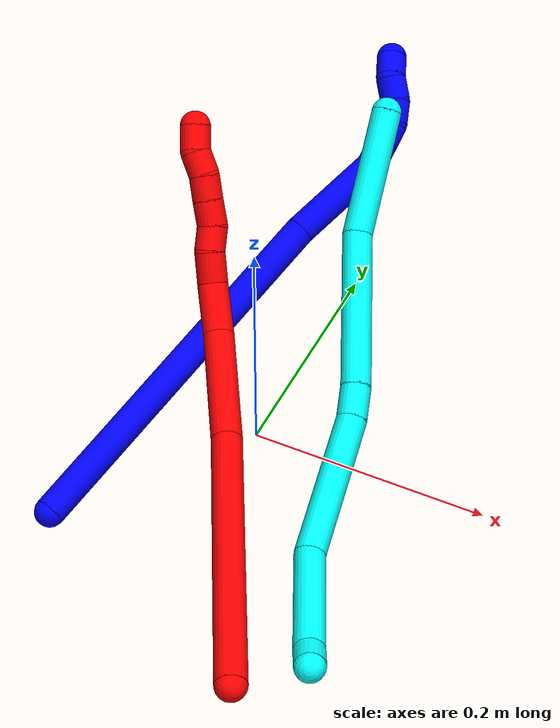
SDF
<sdf version="1.7">
 <world name="default">
  <plugin name="TubeGeneratorPlugin" filename="libtube_generator_plugin.so"/>
  <model name="photoneo_s_sensor">
   <static>1</static>
   <pose>0 0 2 1.57079 1.57079 3.14159</pose>
   <link name="link">
    <inertial><mass>0.1</mass></inertial>
    <sensor name="sensor" type="depth">
     <update_rate>30</update_rate>
     <camera>
      <horizontal_fov>1.22</horizontal_fov>
      <image><width>1920</width><height>1200</height><format>B8G8R8</format></image>
      <clip><near>0.1</near><far>4</far></clip>
      <depth_camera><output>points</output></depth_camera>
     </camera>
     <plugin name="camera_plugin" filename="libgazebo_ros_depth_camera.so">
      <baseline>0.2</baseline>
      <alwaysOn>1</alwaysOn>
      <updateRate>0.0</updateRate>
      <cameraName>camera_ir</cameraName>
      <imageTopicName>/camera/color/image_raw</imageTopicName>
      <cameraInfoTopicName>/camera/color/camera_info</cameraInfoTopicName>
      <depthImageTopicName>/camera/depth/image_raw</depthImageTopicName>
      <depthImageCameraInfoTopicName>/camera/depth/camera_info</depthImageCameraInfoTopicName>
      <pointCloudTopicName>/camera/depth/points</pointCloudTopicName>
      <frameName>fr_optical</frameName>
      <pointCloudCutoff>0.1</pointCloudCutoff>
      <pointCloudCutoffMax>2.0</pointCloudCutoffMax>
      <distortionK1>0</distortionK1>
      <distortionK2>0</distortionK2>
      <distortionK3>0</distortionK3>
      <distortionT1>0</distortionT1>
      <distortionT2>0</distortionT2>
      <CxPrime>0</CxPrime>
      <Cx>0</Cx>
      <Cy>0</Cy>
      <focalLength>0</focalLength>
      <hackBaseline>0</hackBaseline>
     </plugin>
    </sensor>
   </link>
  </model>
  <gravity>0 0 -9.8</gravity>
  <magnetic_field>6e-06 2.3e-05 -4.2e-05</magnetic_field>
  <atmosphere type="adiabatic"/>
  <physics name="default_physics" default="0" type="ode">
   <max_step_size>0.003</max_step_size>
   <real_time_factor>1</real_time_factor>
   <real_time_update_rate>1000</real_time_update_rate>
   <max_contacts>10000</max_contacts>
   <ode>
    <solver>
     <type>quick</type>
     <iters>100</iters>
     <sor>1.3</sor>
     <use_dynamic_moi_rescaling>0</use_dynamic_moi_rescaling>
    </solver>
    <constraints>
     <contact_max_correcting_vel>0</contact_max_correcting_vel>
     <contact_surface_layer>0.001</contact_surface_layer>
     <cfm>0</cfm>
     <erp>0.2</erp>
    </constraints>
   </ode>
  </physics>
  <scene><ambient>0.4 0.4 0.4 1</ambient><background>0.7 0.7 0.7 1</background><shadows>0</shadows></scene>
  <audio><device>default</device></audio>
  <spherical_coordinates>
   <surface_model>EARTH_WGS84</surface_model>
   <latitude_deg>0</latitude_deg>
   <longitude_deg>0</longitude_deg>
   <elevation>0</elevation>
   <heading_deg>0</heading_deg>
  </spherical_coordinates>
  <model name="bin">
   <static>1</static>
   <link name="bottom">
    <collision name="collision-bottom">
     <pose>0 0 -0.01 0 -0 0</pose>
     <geometry><box><size>0.8 0.6 0.02</size></box></geometry>
     <surface>
      <friction><ode><mu>100</mu><mu2>100</mu2></ode></friction>
      <contact><collide_bitmask>65535</collide_bitmask></contact>
     </surface>
    </collision>
   </link>
   <link name="west_wall">
    <collision name="collision-west_wall">
     <pose>-0.41 0 0.1 0 -0 0</pose>
     <geometry><box><size>0.02 0.6 0.2</size></box></geometry>
     <surface>
      <friction><ode><mu>100</mu><mu2>100</mu2></ode></friction>
      <contact><collide_bitmask>65535</collide_bitmask></contact>
     </surface>
    </collision>
   </link>
   <link name="east_wall">
    <collision name="collision-east_wall">
     <pose>0.41 0 0.1 0 -0 0</pose>
     <geometry><box><size>0.02 0.6 0.2</size></box></geometry>
     <surface>
      <friction><ode><mu>100</mu><mu2>100</mu2></ode></friction>
      <contact><collide_bitmask>65535</collide_bitmask></contact>
     </surface>
    </collision>
   </link>
   <link name="south_wall">
    <collision name="collision-south_wall">
     <pose>0 -0.31 0.1 0 -0 0</pose>
     <geometry><box><size>0.8 0.02 0.2</size></box></geometry>
     <surface>
      <friction><ode><mu>100</mu><mu2>100</mu2></ode></friction>
      <contact><collide_bitmask>65535</collide_bitmask></contact>
     </surface>
    </collision>
   </link>
   <link name="north_wall">
    <collision name="collision-north_wall">
     <pose>0 0.31 0.1 0 -0 0</pose>
     <geometry><box><size>0.8 0.02 0.2</size></box></geometry>
     <surface>
      <friction><ode><mu>100</mu><mu2>100</mu2></ode></friction>
      <contact><collide_bitmask>65535</collide_bitmask></contact>
     </surface>
    </collision>
   </link>
  </model>
  <model name="1">
   <static>0</static>
   <link name="1">
    <collision name="collision-cylinder-e_1_1_4">
     <pose>0.028867 0.117736 0.101486 -0.859388 0.18362 -0.084331</pose>
     <geometry><cylinder><radius>0.0125</radius><length>0.316193</length></cylinder></geometry>
     <surface>
      <friction><ode><mu>1.16</mu><mu2>1.16</mu2><slip1>0</slip1><slip2>0</slip2></ode></friction>
      <contact><ode><kp>1e+06</kp><kd>1</kd><max_vel>0</max_vel><min_depth>0.001</min_depth></ode></contact>
     </surface>
    </collision>
    <visual name="visual-cylinder-e_1_1_4">
     <pose>0.028867 0.117736 0.101486 -0.859388 0.18362 -0.084331</pose>
     <geometry><cylinder><radius>0.0125</radius><length>0.316193</length></cylinder></geometry>
     <material><ambient>0 0 1 1</ambient></material>
    </visual>
    <collision name="collision-cylinder-e_2_4_5">
     <pose>0.065163 0.261462 0.234481 -0.689715 0.179938 -0.064788</pose>
     <geometry><cylinder><radius>0.0125</radius><length>0.08303</length></cylinder></geometry>
     <surface>
      <friction><ode><mu>1.16</mu><mu2>1.16</mu2><slip1>0</slip1><slip2>0</slip2></ode></friction>
      <contact><ode><kp>1e+06</kp><kd>1</kd><max_vel>0</max_vel><min_depth>0.001</min_depth></ode></contact>
     </surface>
    </collision>
    <visual name="visual-cylinder-e_2_4_5">
     <pose>0.065163 0.261462 0.234481 -0.689715 0.179938 -0.064788</pose>
     <geometry><cylinder><radius>0.0125</radius><length>0.08303</length></cylinder></geometry>
     <material><ambient>0 0 1 1</ambient></material>
    </visual>
    <collision name="collision-cylinder-e_3_5_6">
     <pose>0.071504 0.295343 0.272471 -0.883159 -0.106261 0.050267</pose>
     <geometry><cylinder><radius>0.0125</radius><length>0.020537</length></cylinder></geometry>
     <surface>
      <friction><ode><mu>1.16</mu><mu2>1.16</mu2><slip1>0</slip1><slip2>0</slip2></ode></friction>
      <contact><ode><kp>1e+06</kp><kd>1</kd><max_vel>0</max_vel><min_depth>0.001</min_depth></ode></contact>
     </surface>
    </collision>
    <visual name="visual-cylinder-e_3_5_6">
     <pose>0.071504 0.295343 0.272471 -0.883159 -0.106261 0.050267</pose>
     <geometry><cylinder><radius>0.0125</radius><length>0.020537</length></cylinder></geometry>
     <material><ambient>0 0 1 1</ambient></material>
    </visual>
    <collision name="collision-cylinder-e_4_6_7">
     <pose>0.069138 0.310942 0.285317 -0.880535 -0.127103 0.059942</pose>
     <geometry><cylinder><radius>0.0125</radius><length>0.020157</length></cylinder></geometry>
     <surface>
      <friction><ode><mu>1.16</mu><mu2>1.16</mu2><slip1>0</slip1><slip2>0</slip2></ode></friction>
      <contact><ode><kp>1e+06</kp><kd>1</kd><max_vel>0</max_vel><min_depth>0.001</min_depth></ode></contact>
     </surface>
    </collision>
    <visual name="visual-cylinder-e_4_6_7">
     <pose>0.069138 0.310942 0.285317 -0.880535 -0.127103 0.059942</pose>
     <geometry><cylinder><radius>0.0125</radius><length>0.020157</length></cylinder></geometry>
     <material><ambient>0 0 1 1</ambient></material>
    </visual>
    <collision name="collision-cylinder-e_5_7_8">
     <pose>0.064542 0.327295 0.295461 -1.15876 -0.338163 0.222464</pose>
     <geometry><cylinder><radius>0.0125</radius><length>0.020002</length></cylinder></geometry>
     <surface>
      <friction><ode><mu>1.16</mu><mu2>1.16</mu2><slip1>0</slip1><slip2>0</slip2></ode></friction>
      <contact><ode><kp>1e+06</kp><kd>1</kd><max_vel>0</max_vel><min_depth>0.001</min_depth></ode></contact>
     </surface>
    </collision>
    <visual name="visual-cylinder-e_5_7_8">
     <pose>0.064542 0.327295 0.295461 -1.15876 -0.338163 0.222464</pose>
     <geometry><cylinder><radius>0.0125</radius><length>0.020002</length></cylinder></geometry>
     <material><ambient>0 0 1 1</ambient></material>
    </visual>
    <collision name="collision-cylinder-e_6_8_9">
     <pose>0.055609 0.344061 0.300908 -1.36812 -0.595338 0.490244</pose>
     <geometry><cylinder><radius>0.0125</radius><length>0.020027</length></cylinder></geometry>
     <surface>
      <friction><ode><mu>1.16</mu><mu2>1.16</mu2><slip1>0</slip1><slip2>0</slip2></ode></friction>
      <contact><ode><kp>1e+06</kp><kd>1</kd><max_vel>0</max_vel><min_depth>0.001</min_depth></ode></contact>
     </surface>
    </collision>
    <visual name="visual-cylinder-e_6_8_9">
     <pose>0.055609 0.344061 0.300908 -1.36812 -0.595338 0.490244</pose>
     <geometry><cylinder><radius>0.0125</radius><length>0.020027</length></cylinder></geometry>
     <material><ambient>0 0 1 1</ambient></material>
    </visual>
    <collision name="collision-cylinder-e_7_9_2">
     <pose>0.048325 0.361877 0.304518 -1.37318 -0.167196 0.137142</pose>
     <geometry><cylinder><radius>0.0125</radius><length>0.020054</length></cylinder></geometry>
     <surface>
      <friction><ode><mu>1.16</mu><mu2>1.16</mu2><slip1>0</slip1><slip2>0</slip2></ode></friction>
      <contact><ode><kp>1e+06</kp><kd>1</kd><max_vel>0</max_vel><min_depth>0.001</min_depth></ode></contact>
     </surface>
    </collision>
    <visual name="visual-cylinder-e_7_9_2">
     <pose>0.048325 0.361877 0.304518 -1.37318 -0.167196 0.137142</pose>
     <geometry><cylinder><radius>0.0125</radius><length>0.020054</length></cylinder></geometry>
     <material><ambient>0 0 1 1</ambient></material>
    </visual>
    <collision name="collision-sphere-2">
     <pose>0.046656 0.371572 0.30646 0 -0 0</pose>
     <geometry><sphere><radius>0.0125</radius></sphere></geometry>
     <surface>
      <friction><ode><mu>1.16</mu><mu2>1.16</mu2><slip1>0</slip1><slip2>0</slip2></ode></friction>
      <contact><ode><kp>1e+06</kp><kd>1</kd><max_vel>0</max_vel><min_depth>0.001</min_depth></ode></contact>
     </surface>
    </collision>
    <visual name="visual-sphere-2">
     <pose>0.046656 0.371572 0.30646 0 -0 0</pose>
     <geometry><sphere><radius>0.0125</radius></sphere></geometry>
     <material><ambient>0 0 1 1</ambient></material>
    </visual>
    <collision name="collision-sphere-9">
     <pose>0.049993 0.352182 0.302577 0 -0 0</pose>
     <geometry><sphere><radius>0.0125</radius></sphere></geometry>
     <surface>
      <friction><ode><mu>1.16</mu><mu2>1.16</mu2><slip1>0</slip1><slip2>0</slip2></ode></friction>
      <contact><ode><kp>1e+06</kp><kd>1</kd><max_vel>0</max_vel><min_depth>0.001</min_depth></ode></contact>
     </surface>
    </collision>
    <visual name="visual-sphere-9">
     <pose>0.049993 0.352182 0.302577 0 -0 0</pose>
     <geometry><sphere><radius>0.0125</radius></sphere></geometry>
     <material><ambient>0 0 1 1</ambient></material>
    </visual>
    <collision name="collision-sphere-4">
     <pose>0.057734 0.235472 0.202972 0 -0 0</pose>
     <geometry><sphere><radius>0.0125</radius></sphere></geometry>
     <surface>
      <friction><ode><mu>1.16</mu><mu2>1.16</mu2><slip1>0</slip1><slip2>0</slip2></ode></friction>
      <contact><ode><kp>1e+06</kp><kd>1</kd><max_vel>0</max_vel><min_depth>0.001</min_depth></ode></contact>
     </surface>
    </collision>
    <visual name="visual-sphere-4">
     <pose>0.057734 0.235472 0.202972 0 -0 0</pose>
     <geometry><sphere><radius>0.0125</radius></sphere></geometry>
     <material><ambient>0 0 1 1</ambient></material>
    </visual>
    <collision name="collision-sphere-1">
     <geometry><sphere><radius>0.0125</radius></sphere></geometry>
     <surface>
      <friction><ode><mu>1.16</mu><mu2>1.16</mu2><slip1>0</slip1><slip2>0</slip2></ode></friction>
      <contact><ode><kp>1e+06</kp><kd>1</kd><max_vel>0</max_vel><min_depth>0.001</min_depth></ode></contact>
     </surface>
    </collision>
    <visual name="visual-sphere-1">
     <geometry><sphere><radius>0.0125</radius></sphere></geometry>
     <material><ambient>0 0 1 1</ambient></material>
    </visual>
    <collision name="collision-sphere-8">
     <pose>0.061224 0.33594 0.29924 0 -0 0</pose>
     <geometry><sphere><radius>0.0125</radius></sphere></geometry>
     <surface>
      <friction><ode><mu>1.16</mu><mu2>1.16</mu2><slip1>0</slip1><slip2>0</slip2></ode></friction>
      <contact><ode><kp>1e+06</kp><kd>1</kd><max_vel>0</max_vel><min_depth>0.001</min_depth></ode></contact>
     </surface>
    </collision>
    <visual name="visual-sphere-8">
     <pose>0.061224 0.33594 0.29924 0 -0 0</pose>
     <geometry><sphere><radius>0.0125</radius></sphere></geometry>
     <material><ambient>0 0 1 1</ambient></material>
    </visual>
    <collision name="collision-sphere-5">
     <pose>0.072593 0.287453 0.26599 0 -0 0</pose>
     <geometry><sphere><radius>0.0125</radius></sphere></geometry>
     <surface>
      <friction><ode><mu>1.16</mu><mu2>1.16</mu2><slip1>0</slip1><slip2>0</slip2></ode></friction>
      <contact><ode><kp>1e+06</kp><kd>1</kd><max_vel>0</max_vel><min_depth>0.001</min_depth></ode></contact>
     </surface>
    </collision>
    <visual name="visual-sphere-5">
     <pose>0.072593 0.287453 0.26599 0 -0 0</pose>
     <geometry><sphere><radius>0.0125</radius></sphere></geometry>
     <material><ambient>0 0 1 1</ambient></material>
    </visual>
    <collision name="collision-sphere-6">
     <pose>0.070415 0.303233 0.278952 0 -0 0</pose>
     <geometry><sphere><radius>0.0125</radius></sphere></geometry>
     <surface>
      <friction><ode><mu>1.16</mu><mu2>1.16</mu2><slip1>0</slip1><slip2>0</slip2></ode></friction>
      <contact><ode><kp>1e+06</kp><kd>1</kd><max_vel>0</max_vel><min_depth>0.001</min_depth></ode></contact>
     </surface>
    </collision>
    <visual name="visual-sphere-6">
     <pose>0.070415 0.303233 0.278952 0 -0 0</pose>
     <geometry><sphere><radius>0.0125</radius></sphere></geometry>
     <material><ambient>0 0 1 1</ambient></material>
    </visual>
    <collision name="collision-sphere-7">
     <pose>0.06786 0.31865 0.291683 0 -0 0</pose>
     <geometry><sphere><radius>0.0125</radius></sphere></geometry>
     <surface>
      <friction><ode><mu>1.16</mu><mu2>1.16</mu2><slip1>0</slip1><slip2>0</slip2></ode></friction>
      <contact><ode><kp>1e+06</kp><kd>1</kd><max_vel>0</max_vel><min_depth>0.001</min_depth></ode></contact>
     </surface>
    </collision>
    <visual name="visual-sphere-7">
     <pose>0.06786 0.31865 0.291683 0 -0 0</pose>
     <geometry><sphere><radius>0.0125</radius></sphere></geometry>
     <material><ambient>0 0 1 1</ambient></material>
    </visual>
    <inertial>
     <pose>0.041548 0.183927 0.161896 0 -0 0</pose>
     <mass>0.5</mass>
     <inertia>
      <ixx>0.002432</ixx>
      <ixy>0</ixy>
      <ixz>0</ixz>
      <iyy>0.001604</iyy>
      <iyz>0</iyz>
      <izz>-0.002476</izz>
     </inertia>
    </inertial>
   </link>
   <pose>-0.106977 -0.152563 0.011497 0.219926 0.976378 0.641606</pose>
  </model>
  <model name="2">
   <static>0</static>
   <link name="2">
    <collision name="collision-cylinder-e_1_1_4">
     <pose>-0.005711 0.059604 -0.098749 -2.59854 -0.049475 0.17728</pose>
     <geometry><cylinder><radius>0.0125</radius><length>0.230969</length></cylinder></geometry>
     <surface>
      <friction><ode><mu>1.16</mu><mu2>1.16</mu2><slip1>0</slip1><slip2>0</slip2></ode></friction>
      <contact><ode><kp>1e+06</kp><kd>1</kd><max_vel>0</max_vel><min_depth>0.001</min_depth></ode></contact>
     </surface>
    </collision>
    <visual name="visual-cylinder-e_1_1_4">
     <pose>-0.005711 0.059604 -0.098749 -2.59854 -0.049475 0.17728</pose>
     <geometry><cylinder><radius>0.0125</radius><length>0.230969</length></cylinder></geometry>
     <material><ambient>1 0 0 1</ambient></material>
    </visual>
    <collision name="collision-cylinder-e_2_4_5">
     <pose>-0.021857 0.150034 -0.232566 -2.42046 -0.219877 0.569598</pose>
     <geometry><cylinder><radius>0.0125</radius><length>0.095683</length></cylinder></geometry>
     <surface>
      <friction><ode><mu>1.16</mu><mu2>1.16</mu2><slip1>0</slip1><slip2>0</slip2></ode></friction>
      <contact><ode><kp>1e+06</kp><kd>1</kd><max_vel>0</max_vel><min_depth>0.001</min_depth></ode></contact>
     </surface>
    </collision>
    <visual name="visual-cylinder-e_2_4_5">
     <pose>-0.021857 0.150034 -0.232566 -2.42046 -0.219877 0.569598</pose>
     <geometry><cylinder><radius>0.0125</radius><length>0.095683</length></cylinder></geometry>
     <material><ambient>1 0 0 1</ambient></material>
    </visual>
    <collision name="collision-cylinder-e_3_5_6">
     <pose>-0.04066 0.197095 -0.279141 -2.18746 -0.398072 0.744121</pose>
     <geometry><cylinder><radius>0.0125</radius><length>0.043177</length></cylinder></geometry>
     <surface>
      <friction><ode><mu>1.16</mu><mu2>1.16</mu2><slip1>0</slip1><slip2>0</slip2></ode></friction>
      <contact><ode><kp>1e+06</kp><kd>1</kd><max_vel>0</max_vel><min_depth>0.001</min_depth></ode></contact>
     </surface>
    </collision>
    <visual name="visual-cylinder-e_3_5_6">
     <pose>-0.04066 0.197095 -0.279141 -2.18746 -0.398072 0.744121</pose>
     <geometry><cylinder><radius>0.0125</radius><length>0.043177</length></cylinder></geometry>
     <material><ambient>1 0 0 1</ambient></material>
    </visual>
    <collision name="collision-cylinder-e_4_6_7">
     <pose>-0.055908 0.22466 -0.293002 -1.77551 -0.536357 0.651375</pose>
     <geometry><cylinder><radius>0.0125</radius><length>0.026923</length></cylinder></geometry>
     <surface>
      <friction><ode><mu>1.16</mu><mu2>1.16</mu2><slip1>0</slip1><slip2>0</slip2></ode></friction>
      <contact><ode><kp>1e+06</kp><kd>1</kd><max_vel>0</max_vel><min_depth>0.001</min_depth></ode></contact>
     </surface>
    </collision>
    <visual name="visual-cylinder-e_4_6_7">
     <pose>-0.055908 0.22466 -0.293002 -1.77551 -0.536357 0.651375</pose>
     <geometry><cylinder><radius>0.0125</radius><length>0.026923</length></cylinder></geometry>
     <material><ambient>1 0 0 1</ambient></material>
    </visual>
    <collision name="collision-cylinder-e_5_7_8">
     <pose>-0.065877 0.245464 -0.297893 -1.83255 -0.30524 0.395651</pose>
     <geometry><cylinder><radius>0.0125</radius><length>0.020566</length></cylinder></geometry>
     <surface>
      <friction><ode><mu>1.16</mu><mu2>1.16</mu2><slip1>0</slip1><slip2>0</slip2></ode></friction>
      <contact><ode><kp>1e+06</kp><kd>1</kd><max_vel>0</max_vel><min_depth>0.001</min_depth></ode></contact>
     </surface>
    </collision>
    <visual name="visual-cylinder-e_5_7_8">
     <pose>-0.065877 0.245464 -0.297893 -1.83255 -0.30524 0.395651</pose>
     <geometry><cylinder><radius>0.0125</radius><length>0.020566</length></cylinder></geometry>
     <material><ambient>1 0 0 1</ambient></material>
    </visual>
    <collision name="collision-cylinder-e_6_8_9">
     <pose>-0.075173 0.263476 -0.302521 -1.81091 -0.614695 0.76875</pose>
     <geometry><cylinder><radius>0.0125</radius><length>0.02152</length></cylinder></geometry>
     <surface>
      <friction><ode><mu>1.16</mu><mu2>1.16</mu2><slip1>0</slip1><slip2>0</slip2></ode></friction>
      <contact><ode><kp>1e+06</kp><kd>1</kd><max_vel>0</max_vel><min_depth>0.001</min_depth></ode></contact>
     </surface>
    </collision>
    <visual name="visual-cylinder-e_6_8_9">
     <pose>-0.075173 0.263476 -0.302521 -1.81091 -0.614695 0.76875</pose>
     <geometry><cylinder><radius>0.0125</radius><length>0.02152</length></cylinder></geometry>
     <material><ambient>1 0 0 1</ambient></material>
    </visual>
    <collision name="collision-cylinder-e_7_9_10">
     <pose>-0.087007 0.280212 -0.30648 -1.79487 -0.589838 0.727692</pose>
     <geometry><cylinder><radius>0.0125</radius><length>0.020237</length></cylinder></geometry>
     <surface>
      <friction><ode><mu>1.16</mu><mu2>1.16</mu2><slip1>0</slip1><slip2>0</slip2></ode></friction>
      <contact><ode><kp>1e+06</kp><kd>1</kd><max_vel>0</max_vel><min_depth>0.001</min_depth></ode></contact>
     </surface>
    </collision>
    <visual name="visual-cylinder-e_7_9_10">
     <pose>-0.087007 0.280212 -0.30648 -1.79487 -0.589838 0.727692</pose>
     <geometry><cylinder><radius>0.0125</radius><length>0.020237</length></cylinder></geometry>
     <material><ambient>1 0 0 1</ambient></material>
    </visual>
    <collision name="collision-cylinder-e_8_10_11">
     <pose>-0.099512 0.29512 -0.311433 -2.00168 -0.749875 1.10139</pose>
     <geometry><cylinder><radius>0.0125</radius><length>0.02018</length></cylinder></geometry>
     <surface>
      <friction><ode><mu>1.16</mu><mu2>1.16</mu2><slip1>0</slip1><slip2>0</slip2></ode></friction>
      <contact><ode><kp>1e+06</kp><kd>1</kd><max_vel>0</max_vel><min_depth>0.001</min_depth></ode></contact>
     </surface>
    </collision>
    <visual name="visual-cylinder-e_8_10_11">
     <pose>-0.099512 0.29512 -0.311433 -2.00168 -0.749875 1.10139</pose>
     <geometry><cylinder><radius>0.0125</radius><length>0.02018</length></cylinder></geometry>
     <material><ambient>1 0 0 1</ambient></material>
    </visual>
    <collision name="collision-cylinder-e_9_11_2">
     <pose>-0.110233 0.310768 -0.318105 -1.95245 -0.379723 0.553801</pose>
     <geometry><cylinder><radius>0.0125</radius><length>0.020743</length></cylinder></geometry>
     <surface>
      <friction><ode><mu>1.16</mu><mu2>1.16</mu2><slip1>0</slip1><slip2>0</slip2></ode></friction>
      <contact><ode><kp>1e+06</kp><kd>1</kd><max_vel>0</max_vel><min_depth>0.001</min_depth></ode></contact>
     </surface>
    </collision>
    <visual name="visual-cylinder-e_9_11_2">
     <pose>-0.110233 0.310768 -0.318105 -1.95245 -0.379723 0.553801</pose>
     <geometry><cylinder><radius>0.0125</radius><length>0.020743</length></cylinder></geometry>
     <material><ambient>1 0 0 1</ambient></material>
    </visual>
    <collision name="collision-sphere-2">
     <pose>-0.114078 0.319708 -0.321692 0 -0 0</pose>
     <geometry><sphere><radius>0.0125</radius></sphere></geometry>
     <surface>
      <friction><ode><mu>1.16</mu><mu2>1.16</mu2><slip1>0</slip1><slip2>0</slip2></ode></friction>
      <contact><ode><kp>1e+06</kp><kd>1</kd><max_vel>0</max_vel><min_depth>0.001</min_depth></ode></contact>
     </surface>
    </collision>
    <visual name="visual-sphere-2">
     <pose>-0.114078 0.319708 -0.321692 0 -0 0</pose>
     <geometry><sphere><radius>0.0125</radius></sphere></geometry>
     <material><ambient>1 0 0 1</ambient></material>
    </visual>
    <collision name="collision-sphere-11">
     <pose>-0.106389 0.301829 -0.314517 0 -0 0</pose>
     <geometry><sphere><radius>0.0125</radius></sphere></geometry>
     <surface>
      <friction><ode><mu>1.16</mu><mu2>1.16</mu2><slip1>0</slip1><slip2>0</slip2></ode></friction>
      <contact><ode><kp>1e+06</kp><kd>1</kd><max_vel>0</max_vel><min_depth>0.001</min_depth></ode></contact>
     </surface>
    </collision>
    <visual name="visual-sphere-11">
     <pose>-0.106389 0.301829 -0.314517 0 -0 0</pose>
     <geometry><sphere><radius>0.0125</radius></sphere></geometry>
     <material><ambient>1 0 0 1</ambient></material>
    </visual>
    <collision name="collision-sphere-10">
     <pose>-0.092635 0.288411 -0.308349 0 -0 0</pose>
     <geometry><sphere><radius>0.0125</radius></sphere></geometry>
     <surface>
      <friction><ode><mu>1.16</mu><mu2>1.16</mu2><slip1>0</slip1><slip2>0</slip2></ode></friction>
      <contact><ode><kp>1e+06</kp><kd>1</kd><max_vel>0</max_vel><min_depth>0.001</min_depth></ode></contact>
     </surface>
    </collision>
    <visual name="visual-sphere-10">
     <pose>-0.092635 0.288411 -0.308349 0 -0 0</pose>
     <geometry><sphere><radius>0.0125</radius></sphere></geometry>
     <material><ambient>1 0 0 1</ambient></material>
    </visual>
    <collision name="collision-sphere-9">
     <pose>-0.081379 0.272014 -0.304612 0 -0 0</pose>
     <geometry><sphere><radius>0.0125</radius></sphere></geometry>
     <surface>
      <friction><ode><mu>1.16</mu><mu2>1.16</mu2><slip1>0</slip1><slip2>0</slip2></ode></friction>
      <contact><ode><kp>1e+06</kp><kd>1</kd><max_vel>0</max_vel><min_depth>0.001</min_depth></ode></contact>
     </surface>
    </collision>
    <visual name="visual-sphere-9">
     <pose>-0.081379 0.272014 -0.304612 0 -0 0</pose>
     <geometry><sphere><radius>0.0125</radius></sphere></geometry>
     <material><ambient>1 0 0 1</ambient></material>
    </visual>
    <collision name="collision-sphere-4">
     <pose>-0.011422 0.119208 -0.197499 0 -0 0</pose>
     <geometry><sphere><radius>0.0125</radius></sphere></geometry>
     <surface>
      <friction><ode><mu>1.16</mu><mu2>1.16</mu2><slip1>0</slip1><slip2>0</slip2></ode></friction>
      <contact><ode><kp>1e+06</kp><kd>1</kd><max_vel>0</max_vel><min_depth>0.001</min_depth></ode></contact>
     </surface>
    </collision>
    <visual name="visual-sphere-4">
     <pose>-0.011422 0.119208 -0.197499 0 -0 0</pose>
     <geometry><sphere><radius>0.0125</radius></sphere></geometry>
     <material><ambient>1 0 0 1</ambient></material>
    </visual>
    <collision name="collision-sphere-1">
     <geometry><sphere><radius>0.0125</radius></sphere></geometry>
     <surface>
      <friction><ode><mu>1.16</mu><mu2>1.16</mu2><slip1>0</slip1><slip2>0</slip2></ode></friction>
      <contact><ode><kp>1e+06</kp><kd>1</kd><max_vel>0</max_vel><min_depth>0.001</min_depth></ode></contact>
     </surface>
    </collision>
    <visual name="visual-sphere-1">
     <geometry><sphere><radius>0.0125</radius></sphere></geometry>
     <material><ambient>1 0 0 1</ambient></material>
    </visual>
    <collision name="collision-sphere-8">
     <pose>-0.068968 0.254937 -0.300431 0 -0 0</pose>
     <geometry><sphere><radius>0.0125</radius></sphere></geometry>
     <surface>
      <friction><ode><mu>1.16</mu><mu2>1.16</mu2><slip1>0</slip1><slip2>0</slip2></ode></friction>
      <contact><ode><kp>1e+06</kp><kd>1</kd><max_vel>0</max_vel><min_depth>0.001</min_depth></ode></contact>
     </surface>
    </collision>
    <visual name="visual-sphere-8">
     <pose>-0.068968 0.254937 -0.300431 0 -0 0</pose>
     <geometry><sphere><radius>0.0125</radius></sphere></geometry>
     <material><ambient>1 0 0 1</ambient></material>
    </visual>
    <collision name="collision-sphere-5">
     <pose>-0.032292 0.18086 -0.267632 0 -0 0</pose>
     <geometry><sphere><radius>0.0125</radius></sphere></geometry>
     <surface>
      <friction><ode><mu>1.16</mu><mu2>1.16</mu2><slip1>0</slip1><slip2>0</slip2></ode></friction>
      <contact><ode><kp>1e+06</kp><kd>1</kd><max_vel>0</max_vel><min_depth>0.001</min_depth></ode></contact>
     </surface>
    </collision>
    <visual name="visual-sphere-5">
     <pose>-0.032292 0.18086 -0.267632 0 -0 0</pose>
     <geometry><sphere><radius>0.0125</radius></sphere></geometry>
     <material><ambient>1 0 0 1</ambient></material>
    </visual>
    <collision name="collision-sphere-6">
     <pose>-0.049029 0.21333 -0.29065 0 -0 0</pose>
     <geometry><sphere><radius>0.0125</radius></sphere></geometry>
     <surface>
      <friction><ode><mu>1.16</mu><mu2>1.16</mu2><slip1>0</slip1><slip2>0</slip2></ode></friction>
      <contact><ode><kp>1e+06</kp><kd>1</kd><max_vel>0</max_vel><min_depth>0.001</min_depth></ode></contact>
     </surface>
    </collision>
    <visual name="visual-sphere-6">
     <pose>-0.049029 0.21333 -0.29065 0 -0 0</pose>
     <geometry><sphere><radius>0.0125</radius></sphere></geometry>
     <material><ambient>1 0 0 1</ambient></material>
    </visual>
    <collision name="collision-sphere-7">
     <pose>-0.062787 0.23599 -0.295355 0 -0 0</pose>
     <geometry><sphere><radius>0.0125</radius></sphere></geometry>
     <surface>
      <friction><ode><mu>1.16</mu><mu2>1.16</mu2><slip1>0</slip1><slip2>0</slip2></ode></friction>
      <contact><ode><kp>1e+06</kp><kd>1</kd><max_vel>0</max_vel><min_depth>0.001</min_depth></ode></contact>
     </surface>
    </collision>
    <visual name="visual-sphere-7">
     <pose>-0.062787 0.23599 -0.295355 0 -0 0</pose>
     <geometry><sphere><radius>0.0125</radius></sphere></geometry>
     <material><ambient>1 0 0 1</ambient></material>
    </visual>
    <inertial>
     <pose>-0.031399 0.142944 -0.193449 0 -0 0</pose>
     <mass>0.5</mass>
     <inertia>
      <ixx>0.001318</ixx>
      <ixy>0</ixy>
      <ixz>0</ixz>
      <iyy>-0.000653</iyy>
      <iyz>0</iyz>
      <izz>-0.000548</izz>
     </inertia>
    </inertial>
   </link>
   <pose>0.111502 -0.269466 0.05938 1.00514 0.565612 0.421301</pose>
  </model>
  <model name="3">
   <static>0</static>
   <link name="3">
    <collision name="collision-cylinder-e_1_1_4">
     <pose>0.031245 -0.040156 -0.017377 1.9792 0.620122 0.9076</pose>
     <geometry><cylinder><radius>0.0125</radius><length>0.10753</length></cylinder></geometry>
     <surface>
      <friction><ode><mu>1.16</mu><mu2>1.16</mu2><slip1>0</slip1><slip2>0</slip2></ode></friction>
      <contact><ode><kp>1e+06</kp><kd>1</kd><max_vel>0</max_vel><min_depth>0.001</min_depth></ode></contact>
     </surface>
    </collision>
    <visual name="visual-cylinder-e_1_1_4">
     <pose>0.031245 -0.040156 -0.017377 1.9792 0.620122 0.9076</pose>
     <geometry><cylinder><radius>0.0125</radius><length>0.10753</length></cylinder></geometry>
     <material><ambient>0.003922 1 0.996078 1</ambient></material>
    </visual>
    <collision name="collision-cylinder-e_2_4_5">
     <pose>0.086746 -0.133633 -0.063717 2.06839 0.380284 0.625883</pose>
     <geometry><cylinder><radius>0.0125</radius><length>0.130698</length></cylinder></geometry>
     <surface>
      <friction><ode><mu>1.16</mu><mu2>1.16</mu2><slip1>0</slip1><slip2>0</slip2></ode></friction>
      <contact><ode><kp>1e+06</kp><kd>1</kd><max_vel>0</max_vel><min_depth>0.001</min_depth></ode></contact>
     </surface>
    </collision>
    <visual name="visual-cylinder-e_2_4_5">
     <pose>0.086746 -0.133633 -0.063717 2.06839 0.380284 0.625883</pose>
     <geometry><cylinder><radius>0.0125</radius><length>0.130698</length></cylinder></geometry>
     <material><ambient>0.003922 1 0.996078 1</ambient></material>
    </visual>
    <collision name="collision-cylinder-e_3_5_6">
     <pose>0.117527 -0.197499 -0.099297 2.13123 0.482807 0.837667</pose>
     <geometry><cylinder><radius>0.0125</radius><length>0.028109</length></cylinder></geometry>
     <surface>
      <friction><ode><mu>1.16</mu><mu2>1.16</mu2><slip1>0</slip1><slip2>0</slip2></ode></friction>
      <contact><ode><kp>1e+06</kp><kd>1</kd><max_vel>0</max_vel><min_depth>0.001</min_depth></ode></contact>
     </surface>
    </collision>
    <visual name="visual-cylinder-e_3_5_6">
     <pose>0.117527 -0.197499 -0.099297 2.13123 0.482807 0.837667</pose>
     <geometry><cylinder><radius>0.0125</radius><length>0.028109</length></cylinder></geometry>
     <material><ambient>0.003922 1 0.996078 1</ambient></material>
    </visual>
    <collision name="collision-cylinder-e_4_6_7">
     <pose>0.156867 -0.243486 -0.143294 2.38279 0.567207 1.26244</pose>
     <geometry><cylinder><radius>0.0125</radius><length>0.122153</length></cylinder></geometry>
     <surface>
      <friction><ode><mu>1.16</mu><mu2>1.16</mu2><slip1>0</slip1><slip2>0</slip2></ode></friction>
      <contact><ode><kp>1e+06</kp><kd>1</kd><max_vel>0</max_vel><min_depth>0.001</min_depth></ode></contact>
     </surface>
    </collision>
    <visual name="visual-cylinder-e_4_6_7">
     <pose>0.156867 -0.243486 -0.143294 2.38279 0.567207 1.26244</pose>
     <geometry><cylinder><radius>0.0125</radius><length>0.122153</length></cylinder></geometry>
     <material><ambient>0.003922 1 0.996078 1</ambient></material>
    </visual>
    <collision name="collision-cylinder-e_5_7_8">
     <pose>0.19966 -0.304224 -0.216861 2.53153 0.222252 0.681179</pose>
     <geometry><cylinder><radius>0.0125</radius><length>0.090528</length></cylinder></geometry>
     <surface>
      <friction><ode><mu>1.16</mu><mu2>1.16</mu2><slip1>0</slip1><slip2>0</slip2></ode></friction>
      <contact><ode><kp>1e+06</kp><kd>1</kd><max_vel>0</max_vel><min_depth>0.001</min_depth></ode></contact>
     </surface>
    </collision>
    <visual name="visual-cylinder-e_5_7_8">
     <pose>0.19966 -0.304224 -0.216861 2.53153 0.222252 0.681179</pose>
     <geometry><cylinder><radius>0.0125</radius><length>0.090528</length></cylinder></geometry>
     <material><ambient>0.003922 1 0.996078 1</ambient></material>
    </visual>
    <collision name="collision-cylinder-e_6_8_2">
     <pose>0.210317 -0.332733 -0.263011 2.82952 0.064863 0.406752</pose>
     <geometry><cylinder><radius>0.0125</radius><length>0.020982</length></cylinder></geometry>
     <surface>
      <friction><ode><mu>1.16</mu><mu2>1.16</mu2><slip1>0</slip1><slip2>0</slip2></ode></friction>
      <contact><ode><kp>1e+06</kp><kd>1</kd><max_vel>0</max_vel><min_depth>0.001</min_depth></ode></contact>
     </surface>
    </collision>
    <visual name="visual-cylinder-e_6_8_2">
     <pose>0.210317 -0.332733 -0.263011 2.82952 0.064863 0.406752</pose>
     <geometry><cylinder><radius>0.0125</radius><length>0.020982</length></cylinder></geometry>
     <material><ambient>0.003922 1 0.996078 1</ambient></material>
    </visual>
    <collision name="collision-sphere-2">
     <pose>0.210997 -0.335947 -0.272974 0 -0 0</pose>
     <geometry><sphere><radius>0.0125</radius></sphere></geometry>
     <surface>
      <friction><ode><mu>1.16</mu><mu2>1.16</mu2><slip1>0</slip1><slip2>0</slip2></ode></friction>
      <contact><ode><kp>1e+06</kp><kd>1</kd><max_vel>0</max_vel><min_depth>0.001</min_depth></ode></contact>
     </surface>
    </collision>
    <visual name="visual-sphere-2">
     <pose>0.210997 -0.335947 -0.272974 0 -0 0</pose>
     <geometry><sphere><radius>0.0125</radius></sphere></geometry>
     <material><ambient>0.003922 1 0.996078 1</ambient></material>
    </visual>
    <collision name="collision-sphere-4">
     <pose>0.062489 -0.080312 -0.034753 0 -0 0</pose>
     <geometry><sphere><radius>0.0125</radius></sphere></geometry>
     <surface>
      <friction><ode><mu>1.16</mu><mu2>1.16</mu2><slip1>0</slip1><slip2>0</slip2></ode></friction>
      <contact><ode><kp>1e+06</kp><kd>1</kd><max_vel>0</max_vel><min_depth>0.001</min_depth></ode></contact>
     </surface>
    </collision>
    <visual name="visual-sphere-4">
     <pose>0.062489 -0.080312 -0.034753 0 -0 0</pose>
     <geometry><sphere><radius>0.0125</radius></sphere></geometry>
     <material><ambient>0.003922 1 0.996078 1</ambient></material>
    </visual>
    <collision name="collision-sphere-1">
     <geometry><sphere><radius>0.0125</radius></sphere></geometry>
     <surface>
      <friction><ode><mu>1.16</mu><mu2>1.16</mu2><slip1>0</slip1><slip2>0</slip2></ode></friction>
      <contact><ode><kp>1e+06</kp><kd>1</kd><max_vel>0</max_vel><min_depth>0.001</min_depth></ode></contact>
     </surface>
    </collision>
    <visual name="visual-sphere-1">
     <geometry><sphere><radius>0.0125</radius></sphere></geometry>
     <material><ambient>0.003922 1 0.996078 1</ambient></material>
    </visual>
    <collision name="collision-sphere-8">
     <pose>0.209637 -0.329519 -0.253047 0 -0 0</pose>
     <geometry><sphere><radius>0.0125</radius></sphere></geometry>
     <surface>
      <friction><ode><mu>1.16</mu><mu2>1.16</mu2><slip1>0</slip1><slip2>0</slip2></ode></friction>
      <contact><ode><kp>1e+06</kp><kd>1</kd><max_vel>0</max_vel><min_depth>0.001</min_depth></ode></contact>
     </surface>
    </collision>
    <visual name="visual-sphere-8">
     <pose>0.209637 -0.329519 -0.253047 0 -0 0</pose>
     <geometry><sphere><radius>0.0125</radius></sphere></geometry>
     <material><ambient>0.003922 1 0.996078 1</ambient></material>
    </visual>
    <collision name="collision-sphere-5">
     <pose>0.111002 -0.186955 -0.092681 0 -0 0</pose>
     <geometry><sphere><radius>0.0125</radius></sphere></geometry>
     <surface>
      <friction><ode><mu>1.16</mu><mu2>1.16</mu2><slip1>0</slip1><slip2>0</slip2></ode></friction>
      <contact><ode><kp>1e+06</kp><kd>1</kd><max_vel>0</max_vel><min_depth>0.001</min_depth></ode></contact>
     </surface>
    </collision>
    <visual name="visual-sphere-5">
     <pose>0.111002 -0.186955 -0.092681 0 -0 0</pose>
     <geometry><sphere><radius>0.0125</radius></sphere></geometry>
     <material><ambient>0.003922 1 0.996078 1</ambient></material>
    </visual>
    <collision name="collision-sphere-6">
     <pose>0.124052 -0.208043 -0.105914 0 -0 0</pose>
     <geometry><sphere><radius>0.0125</radius></sphere></geometry>
     <surface>
      <friction><ode><mu>1.16</mu><mu2>1.16</mu2><slip1>0</slip1><slip2>0</slip2></ode></friction>
      <contact><ode><kp>1e+06</kp><kd>1</kd><max_vel>0</max_vel><min_depth>0.001</min_depth></ode></contact>
     </surface>
    </collision>
    <visual name="visual-sphere-6">
     <pose>0.124052 -0.208043 -0.105914 0 -0 0</pose>
     <geometry><sphere><radius>0.0125</radius></sphere></geometry>
     <material><ambient>0.003922 1 0.996078 1</ambient></material>
    </visual>
    <collision name="collision-sphere-7">
     <pose>0.189683 -0.278929 -0.180674 0 -0 0</pose>
     <geometry><sphere><radius>0.0125</radius></sphere></geometry>
     <surface>
      <friction><ode><mu>1.16</mu><mu2>1.16</mu2><slip1>0</slip1><slip2>0</slip2></ode></friction>
      <contact><ode><kp>1e+06</kp><kd>1</kd><max_vel>0</max_vel><min_depth>0.001</min_depth></ode></contact>
     </surface>
    </collision>
    <visual name="visual-sphere-7">
     <pose>0.189683 -0.278929 -0.180674 0 -0 0</pose>
     <geometry><sphere><radius>0.0125</radius></sphere></geometry>
     <material><ambient>0.003922 1 0.996078 1</ambient></material>
    </visual>
    <inertial>
     <pose>0.119301 -0.1832 -0.111283 0 -0 0</pose>
     <mass>0.5</mass>
     <inertia>
      <ixx>0.000649</ixx>
      <ixy>0</ixy>
      <ixz>0</ixz>
      <iyy>0.00028</iyy>
      <iyz>0</iyz>
      <izz>0.000112</izz>
     </inertia>
    </inertial>
   </link>
   <pose>0.009773 0.231141 0.175284 2.26428 0.380913 -2.47442</pose>
  </model>
 </world>
</sdf>
